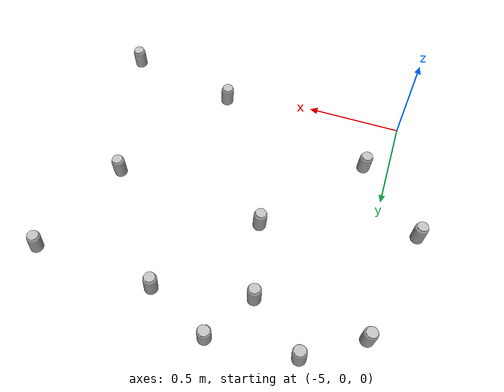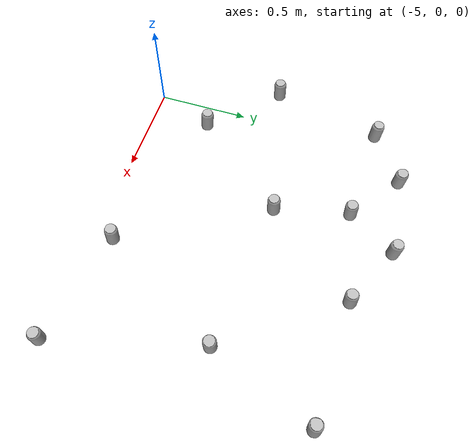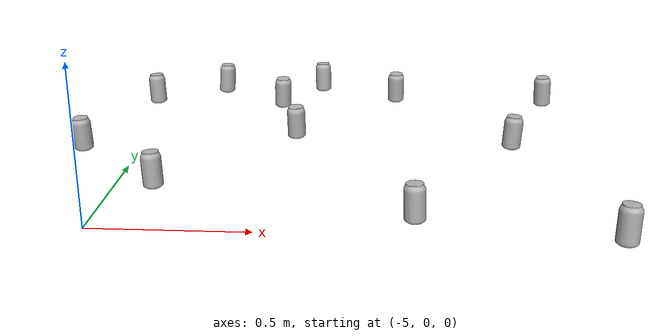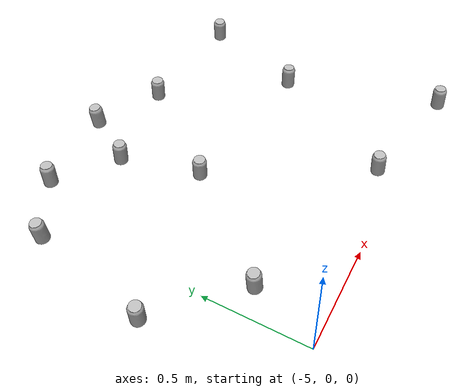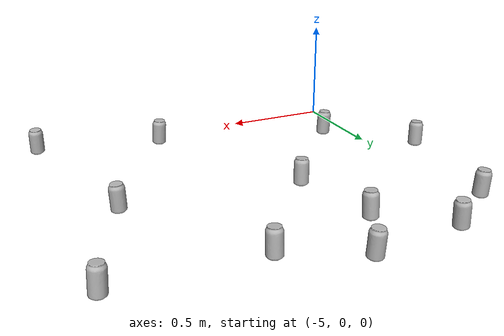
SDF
<sdf version="1.6">
 <world name="default">
  <model name="coke_can26">
   <link name="link">
    <inertial>
     <pose>0 0 0.06 0 -0 0</pose>
     <mass>0.39</mass>
     <inertia>
      <ixx>0.00055575</ixx>
      <ixy>0</ixy>
      <ixz>0</ixz>
      <iyy>0.00055575</iyy>
      <iyz>0</iyz>
      <izz>0.0001755</izz>
     </inertia>
    </inertial>
    <collision name="collision">
     <pose>0.003937 0.004724 -0.18 0 -0 0</pose>
     <geometry><mesh><uri>model://coke_can/meshes/coke_can.dae</uri></mesh></geometry>
     <surface>
      <friction><ode><mu>1</mu><mu2>1</mu2></ode></friction>
      <contact>
       <ode><kp>1e+07</kp><kd>1</kd><min_depth>0.001</min_depth><max_vel>0.1</max_vel></ode>
       <collide_bitmask>256</collide_bitmask>
      </contact>
     </surface>
    </collision>
    <visual name="visual">
     <pose>0.003937 0.004724 -0.18 0 -0 0</pose>
     <geometry><mesh><uri>model://coke_can/meshes/coke_can.dae</uri></mesh></geometry>
    </visual>
   </link>
   <pose>-4.37779 1.47761 -0.002659 -0.055107 0.007745 0.752742</pose>
  </model>
  <model name="coke_can186">
   <link name="link">
    <inertial>
     <pose>0 0 0.06 0 -0 0</pose>
     <mass>0.39</mass>
     <inertia>
      <ixx>0.00055575</ixx>
      <ixy>0</ixy>
      <ixz>0</ixz>
      <iyy>0.00055575</iyy>
      <iyz>0</iyz>
      <izz>0.0001755</izz>
     </inertia>
    </inertial>
    <collision name="collision">
     <pose>0.003937 0.004724 -0.18 0 -0 0</pose>
     <geometry><mesh><uri>model://coke_can/meshes/coke_can.dae</uri></mesh></geometry>
     <surface>
      <friction><ode><mu>1</mu><mu2>1</mu2></ode></friction>
      <contact>
       <ode><kp>1e+07</kp><kd>1</kd><min_depth>0.001</min_depth><max_vel>0.1</max_vel></ode>
       <collide_bitmask>256</collide_bitmask>
      </contact>
     </surface>
    </collision>
    <visual name="visual">
     <pose>0.003937 0.004724 -0.18 0 -0 0</pose>
     <geometry><mesh><uri>model://coke_can/meshes/coke_can.dae</uri></mesh></geometry>
    </visual>
   </link>
   <pose>-4.05925 1.32619 -0.002659 -0.055134 0.007726 -2.95153</pose>
  </model>
  <model name="coke_can320">
   <link name="link">
    <inertial>
     <pose>0 0 0.06 0 -0 0</pose>
     <mass>0.39</mass>
     <inertia>
      <ixx>0.00055575</ixx>
      <ixy>0</ixy>
      <ixz>0</ixz>
      <iyy>0.00055575</iyy>
      <iyz>0</iyz>
      <izz>0.0001755</izz>
     </inertia>
    </inertial>
    <collision name="collision">
     <pose>0.003937 0.004724 -0.18 0 -0 0</pose>
     <geometry><mesh><uri>model://coke_can/meshes/coke_can.dae</uri></mesh></geometry>
     <surface>
      <friction><ode><mu>1</mu><mu2>1</mu2></ode></friction>
      <contact>
       <ode><kp>1e+07</kp><kd>1</kd><min_depth>0.001</min_depth><max_vel>0.1</max_vel></ode>
       <collide_bitmask>256</collide_bitmask>
      </contact>
     </surface>
    </collision>
    <visual name="visual">
     <pose>0.003937 0.004724 -0.18 0 -0 0</pose>
     <geometry><mesh><uri>model://coke_can/meshes/coke_can.dae</uri></mesh></geometry>
    </visual>
   </link>
   <pose>-4.02674 0.095483 -0.002659 -0.055093 0.007755 0.972411</pose>
  </model>
  <model name="coke_can334">
   <link name="link">
    <inertial>
     <pose>0 0 0.06 0 -0 0</pose>
     <mass>0.39</mass>
     <inertia>
      <ixx>0.00055575</ixx>
      <ixy>0</ixy>
      <ixz>0</ixz>
      <iyy>0.00055575</iyy>
      <iyz>0</iyz>
      <izz>0.0001755</izz>
     </inertia>
    </inertial>
    <collision name="collision">
     <pose>0.003937 0.004724 -0.18 0 -0 0</pose>
     <geometry><mesh><uri>model://coke_can/meshes/coke_can.dae</uri></mesh></geometry>
     <surface>
      <friction><ode><mu>1</mu><mu2>1</mu2></ode></friction>
      <contact>
       <ode><kp>1e+07</kp><kd>1</kd><min_depth>0.001</min_depth><max_vel>0.1</max_vel></ode>
       <collide_bitmask>256</collide_bitmask>
      </contact>
     </surface>
    </collision>
    <visual name="visual">
     <pose>0.003937 0.004724 -0.18 0 -0 0</pose>
     <geometry><mesh><uri>model://coke_can/meshes/coke_can.dae</uri></mesh></geometry>
    </visual>
   </link>
   <pose>-3.43927 -0.026375 -0.002659 -0.055093 0.007756 -0.282967</pose>
  </model>
  <model name="coke_can386">
   <link name="link">
    <inertial>
     <pose>0 0 0.06 0 -0 0</pose>
     <mass>0.39</mass>
     <inertia>
      <ixx>0.00055575</ixx>
      <ixy>0</ixy>
      <ixz>0</ixz>
      <iyy>0.00055575</iyy>
      <iyz>0</iyz>
      <izz>0.0001755</izz>
     </inertia>
    </inertial>
    <collision name="collision">
     <pose>0.003937 0.004724 -0.18 0 -0 0</pose>
     <geometry><mesh><uri>model://coke_can/meshes/coke_can.dae</uri></mesh></geometry>
     <surface>
      <friction><ode><mu>1</mu><mu2>1</mu2></ode></friction>
      <contact>
       <ode><kp>1e+07</kp><kd>1</kd><min_depth>0.001</min_depth><max_vel>0.1</max_vel></ode>
       <collide_bitmask>256</collide_bitmask>
      </contact>
     </surface>
    </collision>
    <visual name="visual">
     <pose>0.003937 0.004724 -0.18 0 -0 0</pose>
     <geometry><mesh><uri>model://coke_can/meshes/coke_can.dae</uri></mesh></geometry>
    </visual>
   </link>
   <pose>-5.20813 0.660467 -0.002659 -0.055084 0.007761 2.55563</pose>
  </model>
  <model name="coke_can434">
   <link name="link">
    <inertial>
     <pose>0 0 0.06 0 -0 0</pose>
     <mass>0.39</mass>
     <inertia>
      <ixx>0.00055575</ixx>
      <ixy>0</ixy>
      <ixz>0</ixz>
      <iyy>0.00055575</iyy>
      <iyz>0</iyz>
      <izz>0.0001755</izz>
     </inertia>
    </inertial>
    <collision name="collision">
     <pose>0.003937 0.004724 -0.18 0 -0 0</pose>
     <geometry><mesh><uri>model://coke_can/meshes/coke_can.dae</uri></mesh></geometry>
     <surface>
      <friction><ode><mu>1</mu><mu2>1</mu2></ode></friction>
      <contact>
       <ode><kp>1e+07</kp><kd>1</kd><min_depth>0.001</min_depth><max_vel>0.1</max_vel></ode>
       <collide_bitmask>256</collide_bitmask>
      </contact>
     </surface>
    </collision>
    <visual name="visual">
     <pose>0.003937 0.004724 -0.18 0 -0 0</pose>
     <geometry><mesh><uri>model://coke_can/meshes/coke_can.dae</uri></mesh></geometry>
    </visual>
   </link>
   <pose>-4.44399 0.835802 -0.002659 -0.055088 0.007756 2.8265</pose>
  </model>
  <model name="coke_can608">
   <link name="link">
    <inertial>
     <pose>0 0 0.06 0 -0 0</pose>
     <mass>0.39</mass>
     <inertia>
      <ixx>0.00055575</ixx>
      <ixy>0</ixy>
      <ixz>0</ixz>
      <iyy>0.00055575</iyy>
      <iyz>0</iyz>
      <izz>0.0001755</izz>
     </inertia>
    </inertial>
    <collision name="collision">
     <pose>0.003937 0.004724 -0.18 0 -0 0</pose>
     <geometry><mesh><uri>model://coke_can/meshes/coke_can.dae</uri></mesh></geometry>
     <surface>
      <friction><ode><mu>1</mu><mu2>1</mu2></ode></friction>
      <contact>
       <ode><kp>1e+07</kp><kd>1</kd><min_depth>0.001</min_depth><max_vel>0.1</max_vel></ode>
       <collide_bitmask>256</collide_bitmask>
      </contact>
     </surface>
    </collision>
    <visual name="visual">
     <pose>0.003937 0.004724 -0.18 0 -0 0</pose>
     <geometry><mesh><uri>model://coke_can/meshes/coke_can.dae</uri></mesh></geometry>
    </visual>
   </link>
   <pose>-4.80752 1.43297 -0.002659 -0.055111 0.00774 -0.989309</pose>
  </model>
  <model name="coke_can835">
   <link name="link">
    <inertial>
     <pose>0 0 0.06 0 -0 0</pose>
     <mass>0.39</mass>
     <inertia>
      <ixx>0.00055575</ixx>
      <ixy>0</ixy>
      <ixz>0</ixz>
      <iyy>0.00055575</iyy>
      <iyz>0</iyz>
      <izz>0.0001755</izz>
     </inertia>
    </inertial>
    <collision name="collision">
     <pose>0.003937 0.004724 -0.18 0 -0 0</pose>
     <geometry><mesh><uri>model://coke_can/meshes/coke_can.dae</uri></mesh></geometry>
     <surface>
      <friction><ode><mu>1</mu><mu2>1</mu2></ode></friction>
      <contact>
       <ode><kp>1e+07</kp><kd>1</kd><min_depth>0.001</min_depth><max_vel>0.1</max_vel></ode>
       <collide_bitmask>256</collide_bitmask>
      </contact>
     </surface>
    </collision>
    <visual name="visual">
     <pose>0.003937 0.004724 -0.18 0 -0 0</pose>
     <geometry><mesh><uri>model://coke_can/meshes/coke_can.dae</uri></mesh></geometry>
    </visual>
   </link>
   <pose>-4.53679 1.22652 -0.002659 -0.055115 0.007739 -2.46581</pose>
  </model>
  <model name="coke_can845">
   <link name="link">
    <inertial>
     <pose>0 0 0.06 0 -0 0</pose>
     <mass>0.39</mass>
     <inertia>
      <ixx>0.00055575</ixx>
      <ixy>0</ixy>
      <ixz>0</ixz>
      <iyy>0.00055575</iyy>
      <iyz>0</iyz>
      <izz>0.0001755</izz>
     </inertia>
    </inertial>
    <collision name="collision">
     <pose>0.003937 0.004724 -0.18 0 -0 0</pose>
     <geometry><mesh><uri>model://coke_can/meshes/coke_can.dae</uri></mesh></geometry>
     <surface>
      <friction><ode><mu>1</mu><mu2>1</mu2></ode></friction>
      <contact>
       <ode><kp>1e+07</kp><kd>1</kd><min_depth>0.001</min_depth><max_vel>0.1</max_vel></ode>
       <collide_bitmask>256</collide_bitmask>
      </contact>
     </surface>
    </collision>
    <visual name="visual">
     <pose>0.003937 0.004724 -0.18 0 -0 0</pose>
     <geometry><mesh><uri>model://coke_can/meshes/coke_can.dae</uri></mesh></geometry>
    </visual>
   </link>
   <pose>-4.86793 0.320529 -0.002659 -0.055095 0.007753 1.19064</pose>
  </model>
  <model name="coke_can860">
   <link name="link">
    <inertial>
     <pose>0 0 0.06 0 -0 0</pose>
     <mass>0.39</mass>
     <inertia>
      <ixx>0.00055575</ixx>
      <ixy>0</ixy>
      <ixz>0</ixz>
      <iyy>0.00055575</iyy>
      <iyz>0</iyz>
      <izz>0.0001755</izz>
     </inertia>
    </inertial>
    <collision name="collision">
     <pose>0.003937 0.004724 -0.18 0 -0 0</pose>
     <geometry><mesh><uri>model://coke_can/meshes/coke_can.dae</uri></mesh></geometry>
     <surface>
      <friction><ode><mu>1</mu><mu2>1</mu2></ode></friction>
      <contact>
       <ode><kp>1e+07</kp><kd>1</kd><min_depth>0.001</min_depth><max_vel>0.1</max_vel></ode>
       <collide_bitmask>256</collide_bitmask>
      </contact>
     </surface>
    </collision>
    <visual name="visual">
     <pose>0.003937 0.004724 -0.18 0 -0 0</pose>
     <geometry><mesh><uri>model://coke_can/meshes/coke_can.dae</uri></mesh></geometry>
    </visual>
   </link>
   <pose>-3.43972 1.29888 -0.002659 -0.055088 0.007758 2.45539</pose>
  </model>
  <model name="coke_can877">
   <link name="link">
    <inertial>
     <pose>0 0 0.06 0 -0 0</pose>
     <mass>0.39</mass>
     <inertia>
      <ixx>0.00055575</ixx>
      <ixy>0</ixy>
      <ixz>0</ixz>
      <iyy>0.00055575</iyy>
      <iyz>0</iyz>
      <izz>0.0001755</izz>
     </inertia>
    </inertial>
    <collision name="collision">
     <pose>0.003937 0.004724 -0.18 0 -0 0</pose>
     <geometry><mesh><uri>model://coke_can/meshes/coke_can.dae</uri></mesh></geometry>
     <surface>
      <friction><ode><mu>1</mu><mu2>1</mu2></ode></friction>
      <contact>
       <ode><kp>1e+07</kp><kd>1</kd><min_depth>0.001</min_depth><max_vel>0.1</max_vel></ode>
       <collide_bitmask>256</collide_bitmask>
      </contact>
     </surface>
    </collision>
    <visual name="visual">
     <pose>0.003937 0.004724 -0.18 0 -0 0</pose>
     <geometry><mesh><uri>model://coke_can/meshes/coke_can.dae</uri></mesh></geometry>
    </visual>
   </link>
   <pose>-5.07523 1.25484 -0.002659 -0.055095 0.007754 1.14918</pose>
  </model>
  <model name="coke_can948">
   <link name="link">
    <inertial>
     <pose>0 0 0.06 0 -0 0</pose>
     <mass>0.39</mass>
     <inertia>
      <ixx>0.00055575</ixx>
      <ixy>0</ixy>
      <ixz>0</ixz>
      <iyy>0.00055575</iyy>
      <iyz>0</iyz>
      <izz>0.0001755</izz>
     </inertia>
    </inertial>
    <collision name="collision">
     <pose>0.003937 0.004724 -0.18 0 -0 0</pose>
     <geometry><mesh><uri>model://coke_can/meshes/coke_can.dae</uri></mesh></geometry>
     <surface>
      <friction><ode><mu>1</mu><mu2>1</mu2></ode></friction>
      <contact>
       <ode><kp>1e+07</kp><kd>1</kd><min_depth>0.001</min_depth><max_vel>0.1</max_vel></ode>
       <collide_bitmask>256</collide_bitmask>
      </contact>
     </surface>
    </collision>
    <visual name="visual">
     <pose>0.003937 0.004724 -0.18 0 -0 0</pose>
     <geometry><mesh><uri>model://coke_can/meshes/coke_can.dae</uri></mesh></geometry>
    </visual>
   </link>
   <pose>-3.64865 0.750957 -0.002659 -0.05513 0.007727 -1.3113</pose>
  </model>
 </world>
</sdf>
